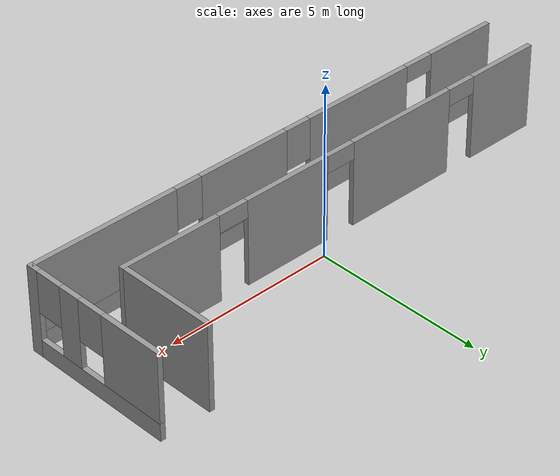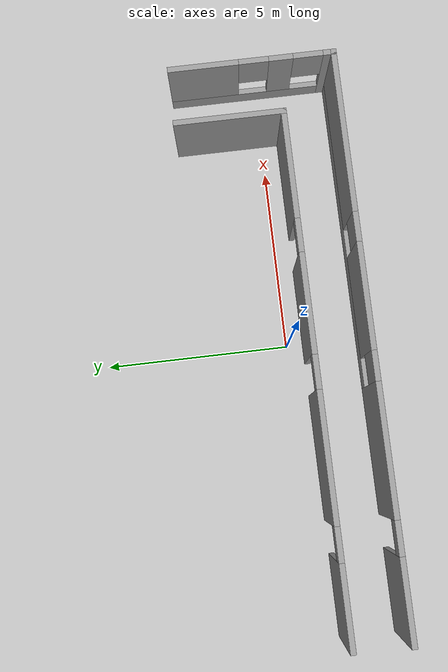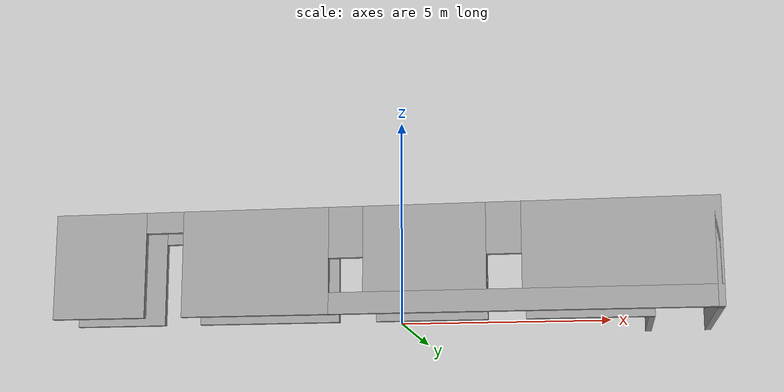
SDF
<?xml version='1.0'?>
<sdf version='1.6'>
  <model name='corridor_simple'>
    <pose frame=''>-0.283848 0.15328 0 0 -0 0</pose>
    <link name='Wall_5'>
      <pose frame=''>0 -2.17962 0 0 -0 0</pose>
      <visual name='Wall_5_Visual_0'>
        <pose frame=''>-6.6313 0 1.25 0 -0 0</pose>
        <geometry>
          <box>
            <size>2.23739 0.15 2.5</size>
          </box>
        </geometry>
        <material>
          <script>
            <uri>file://media/materials/scripts/gazebo.material</uri>
            <name>Gazebo/Grey</name>
          </script>
          <ambient>1 1 1 1</ambient>
        </material>
        <meta>
          <layer>0</layer>
        </meta>
      </visual>
      <collision name='Wall_5_Collision_0'>
        <geometry>
          <box>
            <size>2.23739 0.15 2.5</size>
          </box>
        </geometry>
        <pose frame=''>-6.6313 0 1.25 0 -0 0</pose>
      </collision>
      <visual name='Wall_5_Visual_1'>
        <pose frame=''>-2.86884 0 1.25 0 -0 0</pose>
        <geometry>
          <box>
            <size>3.48753 0.15 2.5</size>
          </box>
        </geometry>
        <material>
          <script>
            <uri>file://media/materials/scripts/gazebo.material</uri>
            <name>Gazebo/Grey</name>
          </script>
          <ambient>1 1 1 1</ambient>
        </material>
        <meta>
          <layer>0</layer>
        </meta>
      </visual>
      <collision name='Wall_5_Collision_1'>
        <geometry>
          <box>
            <size>3.48753 0.15 2.5</size>
          </box>
        </geometry>
        <pose frame=''>-2.86884 0 1.25 0 -0 0</pose>
      </collision>
      <visual name='Wall_5_Visual_2'>
        <pose frame=''>3.31246 0 0.25 0 -0 0</pose>
        <geometry>
          <box>
            <size>8.87507 0.15 0.5</size>
          </box>
        </geometry>
        <material>
          <script>
            <uri>file://media/materials/scripts/gazebo.material</uri>
            <name>Gazebo/Grey</name>
          </script>
          <ambient>1 1 1 1</ambient>
        </material>
        <meta>
          <layer>0</layer>
        </meta>
      </visual>
      <collision name='Wall_5_Collision_2'>
        <geometry>
          <box>
            <size>8.87507 0.15 0.5</size>
          </box>
        </geometry>
        <pose frame=''>3.31246 0 0.25 0 -0 0</pose>
      </collision>
      <visual name='Wall_5_Visual_3'>
        <pose frame=''>1.0939 0 1.5 0 -0 0</pose>
        <geometry>
          <box>
            <size>2.83793 0.15 2</size>
          </box>
        </geometry>
        <material>
          <script>
            <uri>file://media/materials/scripts/gazebo.material</uri>
            <name>Gazebo/Grey</name>
          </script>
          <ambient>1 1 1 1</ambient>
        </material>
        <meta>
          <layer>0</layer>
        </meta>
      </visual>
      <collision name='Wall_5_Collision_3'>
        <geometry>
          <box>
            <size>2.83793 0.15 2</size>
          </box>
        </geometry>
        <pose frame=''>1.0939 0 1.5 0 -0 0</pose>
      </collision>
      <visual name='Wall_5_Visual_4'>
        <pose frame=''>5.53143 0 1.5 0 -0 0</pose>
        <geometry>
          <box>
            <size>4.43714 0.15 2</size>
          </box>
        </geometry>
        <material>
          <script>
            <uri>file://media/materials/scripts/gazebo.material</uri>
            <name>Gazebo/Grey</name>
          </script>
          <ambient>1 1 1 1</ambient>
        </material>
        <meta>
          <layer>0</layer>
        </meta>
      </visual>
      <collision name='Wall_5_Collision_4'>
        <geometry>
          <box>
            <size>4.43714 0.15 2</size>
          </box>
        </geometry>
        <pose frame=''>5.53143 0 1.5 0 -0 0</pose>
      </collision>
      <visual name='Wall_5_Visual_5'>
        <pose frame=''>-0.725072 0 1.9 0 -0 0</pose>
        <geometry>
          <box>
            <size>0.8 0.15 1.2</size>
          </box>
        </geometry>
        <material>
          <script>
            <uri>file://media/materials/scripts/gazebo.material</uri>
            <name>Gazebo/Grey</name>
          </script>
          <ambient>1 1 1 1</ambient>
        </material>
        <meta>
          <layer>0</layer>
        </meta>
      </visual>
      <collision name='Wall_5_Collision_5'>
        <geometry>
          <box>
            <size>0.8 0.15 1.2</size>
          </box>
        </geometry>
        <pose frame=''>-0.725072 0 1.9 0 -0 0</pose>
      </collision>
      <visual name='Wall_5_Visual_6'>
        <pose frame=''>2.91286 0 1.9 0 -0 0</pose>
        <geometry>
          <box>
            <size>0.8 0.15 1.2</size>
          </box>
        </geometry>
        <material>
          <script>
            <uri>file://media/materials/scripts/gazebo.material</uri>
            <name>Gazebo/Grey</name>
          </script>
          <ambient>1 1 1 1</ambient>
        </material>
        <meta>
          <layer>0</layer>
        </meta>
      </visual>
      <collision name='Wall_5_Collision_6'>
        <geometry>
          <box>
            <size>0.8 0.15 1.2</size>
          </box>
        </geometry>
        <pose frame=''>2.91286 0 1.9 0 -0 0</pose>
      </collision>
      <visual name='Wall_5_Visual_7'>
        <pose frame=''>-5.06261 0 2.25 0 -0 0</pose>
        <geometry>
          <box>
            <size>0.9 0.15 0.5</size>
          </box>
        </geometry>
        <material>
          <script>
            <uri>file://media/materials/scripts/gazebo.material</uri>
            <name>Gazebo/Grey</name>
          </script>
          <ambient>1 1 1 1</ambient>
        </material>
        <meta>
          <layer>0</layer>
        </meta>
      </visual>
      <collision name='Wall_5_Collision_7'>
        <geometry>
          <box>
            <size>0.9 0.15 0.5</size>
          </box>
        </geometry>
        <pose frame=''>-5.06261 0 2.25 0 -0 0</pose>
      </collision>
    </link>
    <link name='Wall_6'>
      <pose frame=''>7.675 -0.004623 0 0 -0 1.5708</pose>
      <visual name='Wall_6_Visual_0'>
        <pose frame=''>-2.07332 0 1.25 0 -0 0</pose>
        <geometry>
          <box>
            <size>0.353357 0.15 2.5</size>
          </box>
        </geometry>
        <material>
          <script>
            <uri>file://media/materials/scripts/gazebo.material</uri>
            <name>Gazebo/Grey</name>
          </script>
          <ambient>1 1 1 1</ambient>
        </material>
        <meta>
          <layer>0</layer>
        </meta>
      </visual>
      <collision name='Wall_6_Collision_0'>
        <geometry>
          <box>
            <size>0.353357 0.15 2.5</size>
          </box>
        </geometry>
        <pose frame=''>-2.07332 0 1.25 0 -0 0</pose>
      </collision>
      <visual name='Wall_6_Visual_1'>
        <pose frame=''>0.176679 0 0.25 0 -0 0</pose>
        <geometry>
          <box>
            <size>4.14664 0.15 0.5</size>
          </box>
        </geometry>
        <material>
          <script>
            <uri>file://media/materials/scripts/gazebo.material</uri>
            <name>Gazebo/Grey</name>
          </script>
          <ambient>1 1 1 1</ambient>
        </material>
        <meta>
          <layer>0</layer>
        </meta>
      </visual>
      <collision name='Wall_6_Collision_1'>
        <geometry>
          <box>
            <size>4.14664 0.15 0.5</size>
          </box>
        </geometry>
        <pose frame=''>0.176679 0 0.25 0 -0 0</pose>
      </collision>
      <visual name='Wall_6_Visual_2'>
        <pose frame=''>-0.770805 0 1.5 0 -0 0</pose>
        <geometry>
          <box>
            <size>0.651675 0.15 2</size>
          </box>
        </geometry>
        <material>
          <script>
            <uri>file://media/materials/scripts/gazebo.material</uri>
            <name>Gazebo/Grey</name>
          </script>
          <ambient>1 1 1 1</ambient>
        </material>
        <meta>
          <layer>0</layer>
        </meta>
      </visual>
      <collision name='Wall_6_Collision_2'>
        <geometry>
          <box>
            <size>0.651675 0.15 2</size>
          </box>
        </geometry>
        <pose frame=''>-0.770805 0 1.5 0 -0 0</pose>
      </collision>
      <visual name='Wall_6_Visual_3'>
        <pose frame=''>1.30252 0 1.5 0 -0 0</pose>
        <geometry>
          <box>
            <size>1.89497 0.15 2</size>
          </box>
        </geometry>
        <material>
          <script>
            <uri>file://media/materials/scripts/gazebo.material</uri>
            <name>Gazebo/Grey</name>
          </script>
          <ambient>1 1 1 1</ambient>
        </material>
        <meta>
          <layer>0</layer>
        </meta>
      </visual>
      <collision name='Wall_6_Collision_3'>
        <geometry>
          <box>
            <size>1.89497 0.15 2</size>
          </box>
        </geometry>
        <pose frame=''>1.30252 0 1.5 0 -0 0</pose>
      </collision>
      <visual name='Wall_6_Visual_4'>
        <pose frame=''>-1.49664 0 1.9 0 -0 0</pose>
        <geometry>
          <box>
            <size>0.8 0.15 1.2</size>
          </box>
        </geometry>
        <material>
          <script>
            <uri>file://media/materials/scripts/gazebo.material</uri>
            <name>Gazebo/Grey</name>
          </script>
          <ambient>1 1 1 1</ambient>
        </material>
        <meta>
          <layer>0</layer>
        </meta>
      </visual>
      <collision name='Wall_6_Collision_4'>
        <geometry>
          <box>
            <size>0.8 0.15 1.2</size>
          </box>
        </geometry>
        <pose frame=''>-1.49664 0 1.9 0 -0 0</pose>
      </collision>
      <visual name='Wall_6_Visual_5'>
        <pose frame=''>-0.044967 0 1.9 0 -0 0</pose>
        <geometry>
          <box>
            <size>0.8 0.15 1.2</size>
          </box>
        </geometry>
        <material>
          <script>
            <uri>file://media/materials/scripts/gazebo.material</uri>
            <name>Gazebo/Grey</name>
          </script>
          <ambient>1 1 1 1</ambient>
        </material>
        <meta>
          <layer>0</layer>
        </meta>
      </visual>
      <collision name='Wall_6_Collision_5'>
        <geometry>
          <box>
            <size>0.8 0.15 1.2</size>
          </box>
        </geometry>
        <pose frame=''>-0.044967 0 1.9 0 -0 0</pose>
      </collision>
    </link>
    <link name='Wall_8'>
      <collision name='Wall_8_Collision'>
        <geometry>
          <box>
            <size>3 0.15 2.5</size>
          </box>
        </geometry>
        <pose frame=''>0 0 1.25 0 -0 0</pose>
      </collision>
      <visual name='Wall_8_Visual'>
        <pose frame=''>0 0 1.25 0 -0 0</pose>
        <geometry>
          <box>
            <size>3 0.15 2.5</size>
          </box>
        </geometry>
        <material>
          <script>
            <uri>file://media/materials/scripts/gazebo.material</uri>
            <name>Gazebo/Grey</name>
          </script>
          <ambient>1 1 1 1</ambient>
        </material>
        <meta>
          <layer>0</layer>
        </meta>
      </visual>
      <pose frame=''>6.21258 0.754622 0 0 0 -1.5708</pose>
    </link>
    <link name='Wall_9'>
      <pose frame=''>-0.712424 -0.670377 0 0 -0 3.14159</pose>
      <visual name='Wall_9_Visual_0'>
        <pose frame=''>-5.51141 0 1.25 0 -0 0</pose>
        <geometry>
          <box>
            <size>2.97718 0.15 2.5</size>
          </box>
        </geometry>
        <material>
          <script>
            <uri>file://media/materials/scripts/gazebo.material</uri>
            <name>Gazebo/Grey</name>
          </script>
          <ambient>1 1 1 1</ambient>
        </material>
        <meta>
          <layer>0</layer>
        </meta>
      </visual>
      <collision name='Wall_9_Collision_0'>
        <geometry>
          <box>
            <size>2.97718 0.15 2.5</size>
          </box>
        </geometry>
        <pose frame=''>-5.51141 0 1.25 0 -0 0</pose>
      </collision>
      <visual name='Wall_9_Visual_1'>
        <pose frame=''>-1.78883 0 1.25 0 -0 0</pose>
        <geometry>
          <box>
            <size>2.66797 0.15 2.5</size>
          </box>
        </geometry>
        <material>
          <script>
            <uri>file://media/materials/scripts/gazebo.material</uri>
            <name>Gazebo/Grey</name>
          </script>
          <ambient>1 1 1 1</ambient>
        </material>
        <meta>
          <layer>0</layer>
        </meta>
      </visual>
      <collision name='Wall_9_Collision_1'>
        <geometry>
          <box>
            <size>2.66797 0.15 2.5</size>
          </box>
        </geometry>
        <pose frame=''>-1.78883 0 1.25 0 -0 0</pose>
      </collision>
      <visual name='Wall_9_Visual_2'>
        <pose frame=''>2.16393 0 1.25 0 -0 0</pose>
        <geometry>
          <box>
            <size>3.43754 0.15 2.5</size>
          </box>
        </geometry>
        <material>
          <script>
            <uri>file://media/materials/scripts/gazebo.material</uri>
            <name>Gazebo/Grey</name>
          </script>
          <ambient>1 1 1 1</ambient>
        </material>
        <meta>
          <layer>0</layer>
        </meta>
      </visual>
      <collision name='Wall_9_Collision_2'>
        <geometry>
          <box>
            <size>3.43754 0.15 2.5</size>
          </box>
        </geometry>
        <pose frame=''>2.16393 0 1.25 0 -0 0</pose>
      </collision>
      <visual name='Wall_9_Visual_3'>
        <pose frame=''>5.89135 0 1.25 0 -0 0</pose>
        <geometry>
          <box>
            <size>2.21731 0.15 2.5</size>
          </box>
        </geometry>
        <material>
          <script>
            <uri>file://media/materials/scripts/gazebo.material</uri>
            <name>Gazebo/Grey</name>
          </script>
          <ambient>1 1 1 1</ambient>
        </material>
        <meta>
          <layer>0</layer>
        </meta>
      </visual>
      <collision name='Wall_9_Collision_3'>
        <geometry>
          <box>
            <size>2.21731 0.15 2.5</size>
          </box>
        </geometry>
        <pose frame=''>5.89135 0 1.25 0 -0 0</pose>
      </collision>
      <visual name='Wall_9_Visual_4'>
        <pose frame=''>-3.57281 0 2.25 0 -0 0</pose>
        <geometry>
          <box>
            <size>0.9 0.15 0.5</size>
          </box>
        </geometry>
        <material>
          <script>
            <uri>file://media/materials/scripts/gazebo.material</uri>
            <name>Gazebo/Grey</name>
          </script>
          <ambient>1 1 1 1</ambient>
        </material>
        <meta>
          <layer>0</layer>
        </meta>
      </visual>
      <collision name='Wall_9_Collision_4'>
        <geometry>
          <box>
            <size>0.9 0.15 0.5</size>
          </box>
        </geometry>
        <pose frame=''>-3.57281 0 2.25 0 -0 0</pose>
      </collision>
      <visual name='Wall_9_Visual_5'>
        <pose frame=''>-0.004842 0 2.25 0 -0 0</pose>
        <geometry>
          <box>
            <size>0.9 0.15 0.5</size>
          </box>
        </geometry>
        <material>
          <script>
            <uri>file://media/materials/scripts/gazebo.material</uri>
            <name>Gazebo/Grey</name>
          </script>
          <ambient>1 1 1 1</ambient>
        </material>
        <meta>
          <layer>0</layer>
        </meta>
      </visual>
      <collision name='Wall_9_Collision_5'>
        <geometry>
          <box>
            <size>0.9 0.15 0.5</size>
          </box>
        </geometry>
        <pose frame=''>-0.004842 0 2.25 0 -0 0</pose>
      </collision>
      <visual name='Wall_9_Visual_6'>
        <pose frame=''>4.33269 0 2.25 0 -0 0</pose>
        <geometry>
          <box>
            <size>0.9 0.15 0.5</size>
          </box>
        </geometry>
        <material>
          <script>
            <uri>file://media/materials/scripts/gazebo.material</uri>
            <name>Gazebo/Grey</name>
          </script>
          <ambient>1 1 1 1</ambient>
        </material>
        <meta>
          <layer>0</layer>
        </meta>
      </visual>
      <collision name='Wall_9_Collision_6'>
        <geometry>
          <box>
            <size>0.9 0.15 0.5</size>
          </box>
        </geometry>
        <pose frame=''>4.33269 0 2.25 0 -0 0</pose>
      </collision>
    </link>
    <static>1</static>
  </model>
</sdf>
